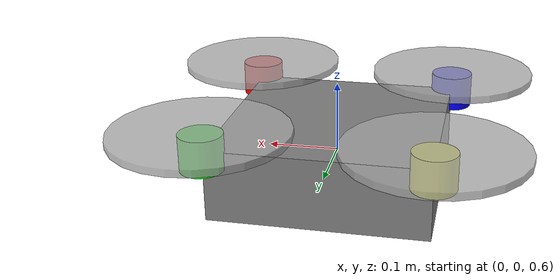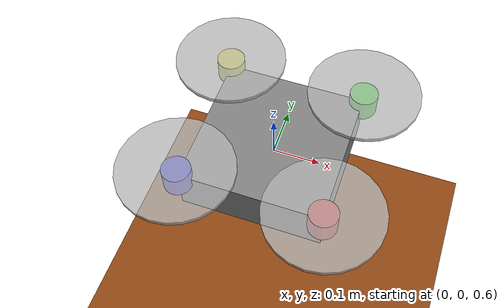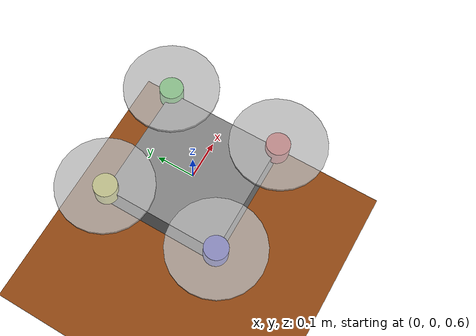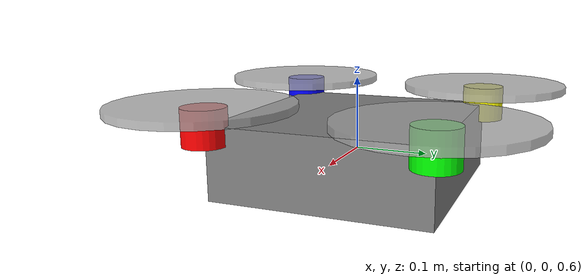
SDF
<?xml version="1.0" ?>
<sdf version="1.9">
  <world name="drone_world">
    <physics name="1ms" type="ignored">
      <max_step_size>0.001</max_step_size>
      <real_time_factor>1.0</real_time_factor>
      <real_time_update_rate>1000</real_time_update_rate>
    </physics>

    <plugin
      filename="gz-sim-physics-system"
      name="gz::sim::systems::Physics">
    </plugin>
    <plugin
      filename="gz-sim-user-commands-system"
      name="gz::sim::systems::UserCommands">
    </plugin>
    <plugin
      filename="gz-sim-scene-broadcaster-system"
      name="gz::sim::systems::SceneBroadcaster">
    </plugin>
    <plugin
      filename="gz-sim-sensors-system"
      name="gz::sim::systems::Sensors">
      <render_engine>ogre2</render_engine>
    </plugin>
    <plugin
      filename="gz-sim-joint-state-publisher-system"
      name="gz::sim::systems::JointStatePublisher">
    </plugin>

    <!-- Ground Plane -->
    <model name="ground_plane">
      <static>true</static>
      <link name="link">
        <collision name="collision">
          <geometry>
            <plane>
              <normal>0 0 1</normal>
              <size>100 100</size>
            </plane>
          </geometry>
          <surface>
            <friction>
              <ode>
                <mu>100</mu>
                <mu2>50</mu2>
              </ode>
            </friction>
          </surface>
        </collision>
        <visual name="visual">
          <geometry>
            <plane>
              <normal>0 0 1</normal>
              <size>100 100</size>
            </plane>
          </geometry>
          <material>
            <ambient>0.55 0.27 0.07 1</ambient>
            <diffuse>0.55 0.27 0.07 1</diffuse>
            <specular>0.1 0.1 0.1 1</specular>
          </material>
        </visual>
      </link>
    </model>

    <model name="my_drone">
      <!-- Single unified model approach -->
      <pose>0 0 0.5 0 0 0</pose>

      <!-- Main body -->
      <link name="base_link">
        <pose>0 0 0.1 0 0 0</pose>
        <inertial>
          <mass>1.5</mass>
          <inertia>
            <ixx>0.029125</ixx>
            <ixy>0</ixy>
            <ixz>0</ixz>
            <iyy>0.029125</iyy>
            <iyz>0</iyz>
            <izz>0.055225</izz>
          </inertia>
        </inertial>

        <collision name="main_body_collision">
          <geometry>
            <box>
              <size>0.3 0.3 0.1</size>
            </box>
          </geometry>
        </collision>

        <visual name="main_body_visual">
          <geometry>
            <box>
              <size>0.3 0.3 0.1</size>
            </box>
          </geometry>
          <material>
            <ambient>0.5 0.5 0.5 1</ambient>
            <diffuse>0.5 0.5 0.5 1</diffuse>
          </material>
        </visual>

        <!-- LIDAR sensor -->
        <sensor name="lidar_sensor" type="lidar">
          <pose>0 0 0.15 0 0 0</pose>
          <topic>lidar</topic>
          <update_rate>10</update_rate>
          <visualize>true</visualize>
          <always_on>true</always_on>
          <ray>
            <scan>
              <horizontal>
                <samples>360</samples>
                <resolution>1</resolution>
                <min_angle>-3.14159</min_angle>
                <max_angle>3.14159</max_angle>
              </horizontal>
              <vertical>
                <samples>1</samples>
                <resolution>1</resolution>
                <min_angle>0</min_angle>
                <max_angle>0</max_angle>
              </vertical>
            </scan>
            <range>
              <min>0.08</min>
              <max>10.0</max>
              <resolution>0.01</resolution>
            </range>
          </ray>
        </sensor>
      </link>

      <!-- Motor links with internal inertia -->
      <link name="front_right_motor">
       <pose relative_to="base_link">0.15 -0.15 0.05 0 0 0</pose>
       <inertial>
          <mass>0.1</mass>
          <inertia>
            <ixx>0.001</ixx>
            <ixy>0</ixy>
            <ixz>0</ixz>
            <iyy>0.001</iyy>
            <iyz>0</iyz>
            <izz>0.002</izz>
          </inertia>
        </inertial>
        <collision name="motor_collision">
          <geometry>
            <cylinder>
              <radius>0.03</radius>
              <length>0.05</length>
            </cylinder>
          </geometry>
        </collision>
        <visual name="motor_visual">
          <geometry>
            <cylinder>
              <radius>0.03</radius>
              <length>0.05</length>
            </cylinder>
          </geometry>
          <material>
            <ambient>1 0 0 1</ambient>
            <diffuse>1 0 0 1</diffuse>
          </material>
        </visual>
      </link>

      <link name="front_left_motor">
        <pose relative_to="base_link">0.15 0.15 0.05 0 0 0</pose>
        <inertial>
          <mass>0.1</mass>
          <inertia>
            <ixx>0.001</ixx>
            <ixy>0</ixy>
            <ixz>0</ixz>
            <iyy>0.001</iyy>
            <iyz>0</iyz>
            <izz>0.002</izz>
          </inertia>
        </inertial>
        <collision name="motor_collision">
          <geometry>
            <cylinder>
              <radius>0.03</radius>
              <length>0.05</length>
            </cylinder>
          </geometry>
        </collision>
        <visual name="motor_visual">
          <geometry>
            <cylinder>
              <radius>0.03</radius>
              <length>0.05</length>
            </cylinder>
          </geometry>
          <material>
            <ambient>0 1 0 1</ambient>
            <diffuse>0 1 0 1</diffuse>
          </material>
        </visual>
      </link>

      <link name="rear_right_motor">
        <pose relative_to="base_link">-0.15 -0.15 0.05 0 0 0</pose>
        <inertial>
          <mass>0.1</mass>
          <inertia>
            <ixx>0.001</ixx>
            <ixy>0</ixy>
            <ixz>0</ixz>
            <iyy>0.001</iyy>
            <iyz>0</iyz>
            <izz>0.002</izz>
          </inertia>
        </inertial>
        <collision name="motor_collision">
          <geometry>
            <cylinder>
              <radius>0.03</radius>
              <length>0.05</length>
            </cylinder>
          </geometry>
        </collision>
        <visual name="motor_visual">
          <geometry>
            <cylinder>
              <radius>0.03</radius>
              <length>0.05</length>
            </cylinder>
          </geometry>
          <material>
            <ambient>0 0 1 1</ambient>
            <diffuse>0 0 1 1</diffuse>
          </material>
        </visual>
      </link>

      <link name="rear_left_motor">
        <pose relative_to="base_link">-0.15 0.15 0.05 0 0 0</pose>
        <inertial>
          <mass>0.1</mass>
          <inertia>
            <ixx>0.001</ixx>
            <ixy>0</ixy>
            <ixz>0</ixz>
            <iyy>0.001</iyy>
            <iyz>0</iyz>
            <izz>0.002</izz>
          </inertia>
        </inertial>
        <collision name="motor_collision">
          <geometry>
            <cylinder>
              <radius>0.03</radius>
              <length>0.05</length>
            </cylinder>
          </geometry>
        </collision>
        <visual name="motor_visual">
          <geometry>
            <cylinder>
              <radius>0.03</radius>
              <length>0.05</length>
            </cylinder>
          </geometry>
          <material>
            <ambient>1 1 0 1</ambient>
            <diffuse>1 1 0 1</diffuse>
          </material>
        </visual>
      </link>

      <!-- Propeller links -->
      <link name="front_right_propeller">
        <pose relative_to="front_right_motor">0 0 0.025 0 0 0</pose>
        <inertial>
          <mass>0.05</mass>
          <inertia>
            <ixx>0.0001</ixx>
            <ixy>0</ixy>
            <ixz>0</ixz>
            <iyy>0.0001</iyy>
            <iyz>0</iyz>
            <izz>0.0002</izz>
          </inertia>
        </inertial>
        <collision name="propeller_collision">
          <geometry>
            <cylinder>
              <radius>0.12</radius>
              <length>0.01</length>
            </cylinder>
          </geometry>
        </collision>
        <visual name="propeller_visual">
          <geometry>
            <cylinder>
              <radius>0.12</radius>
              <length>0.01</length>
            </cylinder>
          </geometry>
          <material>
            <ambient>0.7 0.7 0.7 0.8</ambient>
            <diffuse>0.7 0.7 0.7 0.8</diffuse>
          </material>
        </visual>
      </link>

      <link name="front_left_propeller">
        <pose relative_to="front_left_motor">0 0 0.025 0 0 0</pose>
        <inertial>
          <mass>0.05</mass>
          <inertia>
            <ixx>0.0001</ixx>
            <ixy>0</ixy>
            <ixz>0</ixz>
            <iyy>0.0001</iyy>
            <iyz>0</iyz>
            <izz>0.0002</izz>
          </inertia>
        </inertial>
        <collision name="propeller_collision">
          <geometry>
            <cylinder>
              <radius>0.12</radius>
              <length>0.01</length>
            </cylinder>
          </geometry>
        </collision>
        <visual name="propeller_visual">
          <geometry>
            <cylinder>
              <radius>0.12</radius>
              <length>0.01</length>
            </cylinder>
          </geometry>
          <material>
            <ambient>0.7 0.7 0.7 0.8</ambient>
            <diffuse>0.7 0.7 0.7 0.8</diffuse>
          </material>
        </visual>
      </link>

      <link name="rear_right_propeller">
        <pose relative_to="rear_right_motor">0 0 0.025 0 0 0</pose>
        <inertial>
          <mass>0.05</mass>
          <inertia>
            <ixx>0.0001</ixx>
            <ixy>0</ixy>
            <ixz>0</ixz>
            <iyy>0.0001</iyy>
            <iyz>0</iyz>
            <izz>0.0002</izz>
          </inertia>
        </inertial>
        <collision name="propeller_collision">
          <geometry>
            <cylinder>
              <radius>0.12</radius>
              <length>0.01</length>
            </cylinder>
          </geometry>
        </collision>
        <visual name="propeller_visual">
          <geometry>
            <cylinder>
              <radius>0.12</radius>
              <length>0.01</length>
            </cylinder>
          </geometry>
          <material>
            <ambient>0.7 0.7 0.7 0.8</ambient>
            <diffuse>0.7 0.7 0.7 0.8</diffuse>
          </material>
        </visual>
      </link>

      <link name="rear_left_propeller">
        <pose relative_to="rear_left_motor">0 0 0.025 0 0 0</pose>
        <inertial>
          <mass>0.05</mass>
          <inertia>
            <ixx>0.0001</ixx>
            <ixy>0</ixy>
            <ixz>0</ixz>
            <iyy>0.0001</iyy>
            <iyz>0</iyz>
            <izz>0.0002</izz>
          </inertia>
        </inertial>
        <collision name="propeller_collision">
          <geometry>
            <cylinder>
              <radius>0.12</radius>
              <length>0.01</length>
            </cylinder>
          </geometry>
        </collision>
        <visual name="propeller_visual">
          <geometry>
            <cylinder>
              <radius>0.12</radius>
              <length>0.01</length>
            </cylinder>
          </geometry>
          <material>
            <ambient>0.7 0.7 0.7 0.8</ambient>
            <diffuse>0.7 0.7 0.7 0.8</diffuse>
          </material>
        </visual>
      </link>

      <!-- Critical fix: Using rigidly enforced joints with feedback enabled -->
      <joint name="front_right_motor_joint" type="fixed">
        <parent>base_link</parent>
        <child>front_right_motor</child>
        <pose relative_to="base_link">0.15 -0.15 0.05 0 0 0</pose>
        <physics>
          <ode>
            <provide_feedback>true</provide_feedback>
            <cfm>0</cfm>
            <erp>1</erp>
          </ode>
       </physics>
      </joint>

      <joint name="front_left_motor_joint" type="fixed">
        <parent>base_link</parent>
        <child>front_left_motor</child>
        <pose relative_to="base_link">0.15 0.15 0.05 0 0 0</pose>
        <physics>
          <ode>
            <provide_feedback>true</provide_feedback>
            <cfm>0</cfm>
            <erp>1</erp>
          </ode>
        </physics>
      </joint>

      <joint name="rear_right_motor_joint" type="fixed">
        <parent>base_link</parent>
        <child>rear_right_motor</child>
        <pose relative_to="base_link">0 0 0 0 0 0</pose>
        <physics>
          <ode>
            <provide_feedback>true</provide_feedback>
            <cfm>0</cfm>
            <erp>1</erp>
          </ode>
        </physics>
      </joint>

      <joint name="rear_left_motor_joint" type="fixed">
        <parent>base_link</parent>
        <child>rear_left_motor</child>
        <pose relative_to="base_link">0 0 0 0 0 0</pose>
        <physics>
          <ode>
            <provide_feedback>true</provide_feedback>
            <cfm>0</cfm>
            <erp>1</erp>
          </ode>
        </physics>
      </joint>

      <!-- Propeller joints -->
      <joint name="front_right_propeller_joint" type="revolute">
        <parent>front_right_motor</parent>
        <child>front_right_propeller</child>
        <pose relative_to="front_right_motor">0 0 0.025 0 0 0</pose>
        <axis>
          <xyz>0 0 1</xyz>
          <limit>
            <lower>-1e+16</lower>
            <upper>1e+16</upper>
          </limit>
        </axis>
      </joint>

      <joint name="front_left_propeller_joint" type="revolute">
        <parent>front_left_motor</parent>
        <child>front_left_propeller</child>
        <pose relative_to="front_left_motor">0 0 0 0 0 0</pose>
        <axis>
          <xyz>0 0 1</xyz>
          <limit>
            <lower>-1e+16</lower>
            <upper>1e+16</upper>
          </limit>
        </axis>
      </joint>

      <joint name="rear_right_propeller_joint" type="revolute">
        <parent>rear_right_motor</parent>
        <child>rear_right_propeller</child>
        <pose relative_to="rear_right_motor">0 0 0 0 0 0</pose>
        <axis>
          <xyz>0 0 1</xyz>
          <limit>
            <lower>-1e+16</lower>
            <upper>1e+16</upper>
          </limit>
        </axis>
      </joint>

      <joint name="rear_left_propeller_joint" type="revolute">
        <parent>rear_left_motor</parent>
        <child>rear_left_propeller</child>
        <pose relative_to="rear_left_motor">0 0 0 0 0 0</pose>
        <axis>
          <xyz>0 0 1</xyz>
          <limit>
            <lower>-1e+16</lower>
            <upper>1e+16</upper>
          </limit>
        </axis>
      </joint>
    </model>
  </world>
</sdf>
